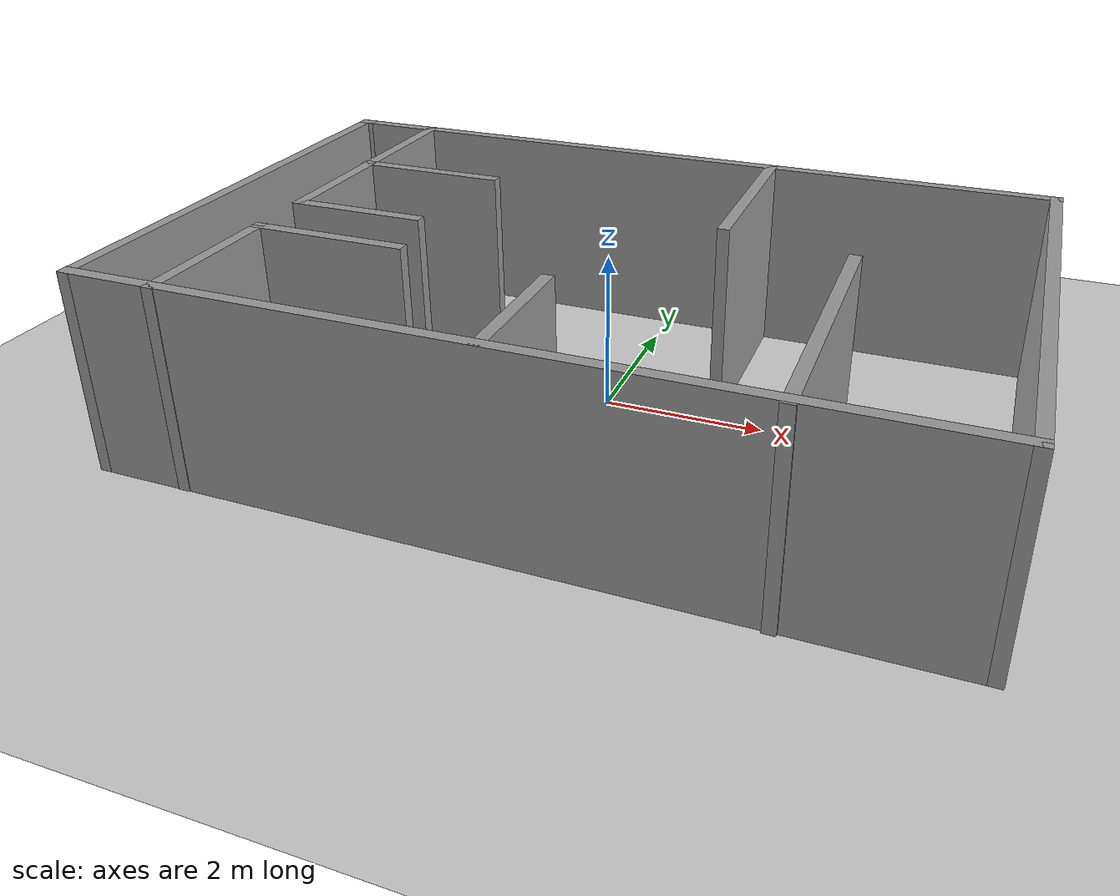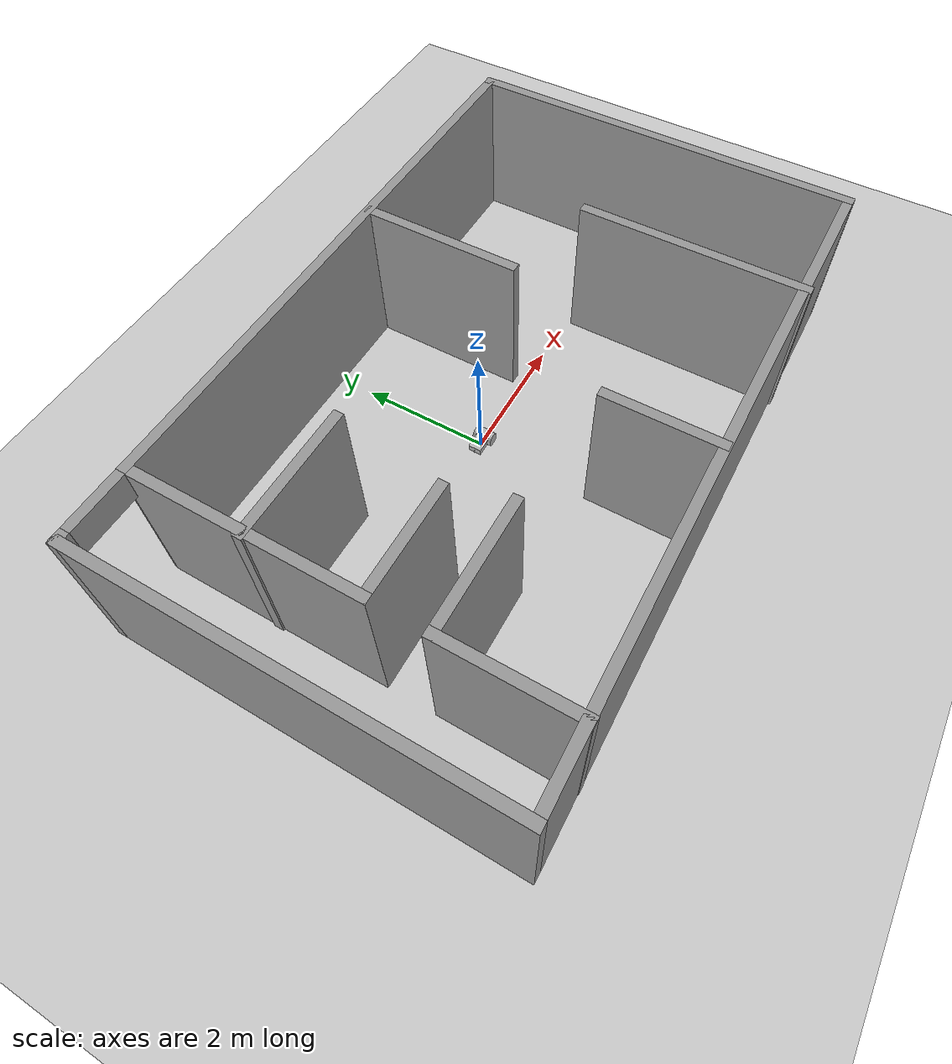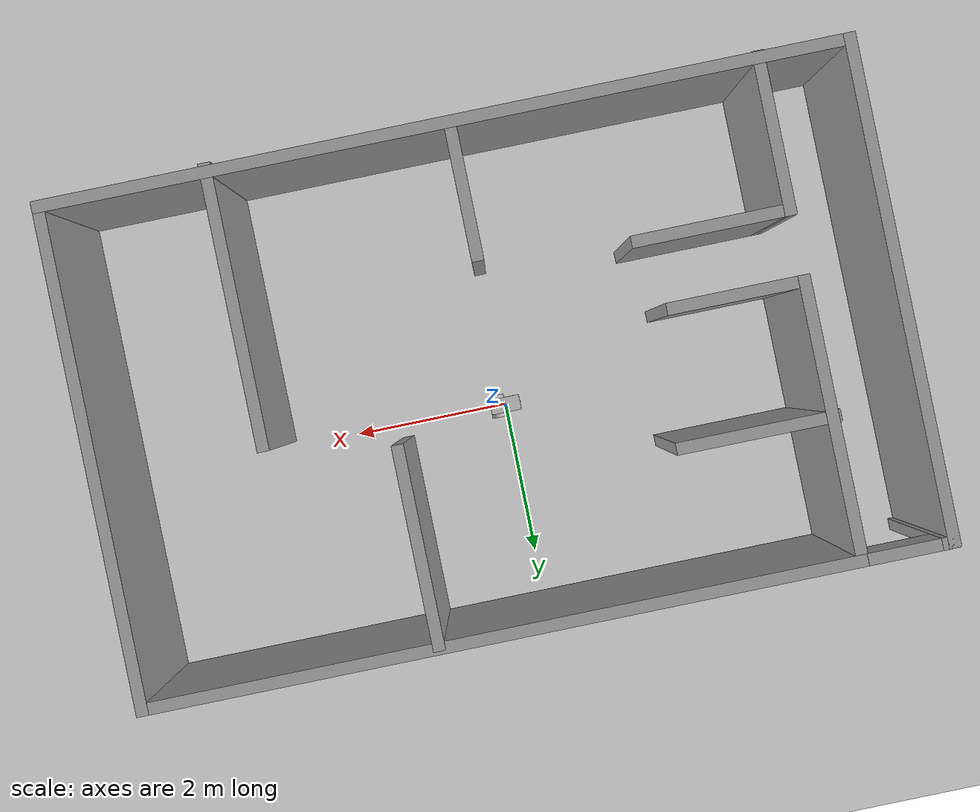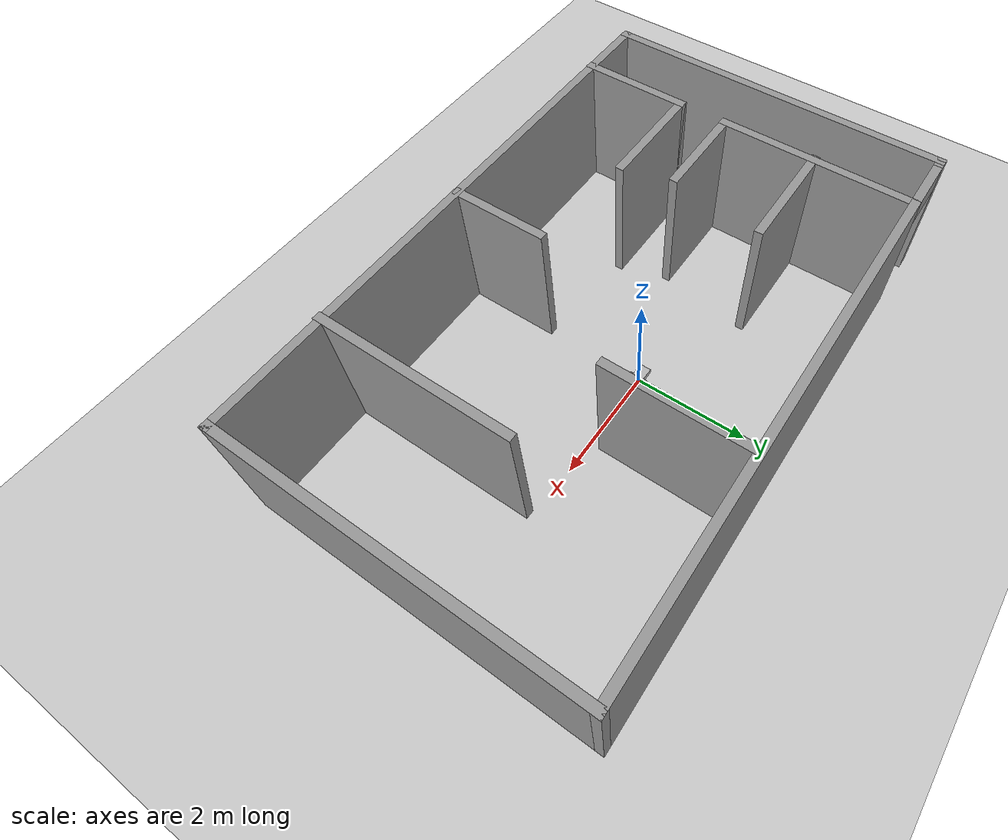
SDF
<?xml version="1.0" ?>
<sdf version="1.5">
  <world name="main_world">
    <scene>
      <ambient>0.8 0.8 0.8 1</ambient>
      <background>0 0 0 1</background>
      <shadows>false</shadows>
    </scene>

    <!-- A ground plane -->
    <include>
      <uri>model://ground_plane</uri>
    </include>

     <!-- A map -->
    <include>
      <uri>model://Maze</uri>
    </include>

    <!-- robot model -->
    <model name="my_robot">
      <include>
        <uri>model://Robot</uri>
      </include>

      <plugin name='control' filename='librobot_plugin.so'>
	<velocity>10</velocity>
	<behavior>1</behavior>
      </plugin>
    </model>
  </world>
</sdf>

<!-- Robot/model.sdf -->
<sdf version='1.6'>
  <model name="my_robot">
    <static>false</static>
    <link name='chassis'>
      <pose>0 0 .1 0 0 0</pose>
      <inertial>
	<mass>0.2</mass>
	<inertia>
          <ixx>0.00083</ixx>       <!-- for a box: ixx = 0.083 * mass * (y*y + z*z) -->
          <ixy>0.0</ixy>           <!-- for a box: ixy = 0 -->
          <ixz>0.0</ixz>           <!-- for a box: ixz = 0 -->
          <iyy>0.002822</iyy>      <!-- for a box: iyy = 0.083 * mass * (x*x + z*z) -->
          <iyz>0.0</iyz>           <!-- for a box: iyz = 0 -->
          <izz>0.00332</izz>       <!-- for a box: izz = 0.083 * mass * (x*x + y*y) -->
	</inertia>
      </inertial>
      <collision name='collision'>
        <geometry>
          <box>
            <size>.4 .2 .1</size>
          </box>
        </geometry>
      </collision>
      <visual name='visual'>
        <geometry>
          <box>
            <size>.4 .2 .1</size>
          </box>
        </geometry>
      </visual>
      <collision name='caster_collision'>
        <pose>-0.15 0 -0.05 0 0 0</pose>
        <geometry>
          <sphere>
            <radius>.05</radius>
          </sphere>
        </geometry>
        <surface>
          <friction>
            <ode>
              <mu>0</mu>
              <mu2>0</mu2>
              <slip1>1.0</slip1>
              <slip2>1.0</slip2>
            </ode>
          </friction>
        </surface>
      </collision>
      <visual name='caster_visual'>
        <pose>-0.15 0 -0.05 0 0 0</pose>
        <geometry>
          <sphere>
            <radius>.05</radius>
          </sphere>
        </geometry>
      </visual>
    </link>

    <link name="right_wheel">
      <pose>0.1 0.125 0.1 0 1.5707 -1.5707</pose>
      <inertial>
	<mass>0.1</mass>
	<inertia>
          <ixx>0.00026975</ixx>
          <iyy>0.00026975</iyy>
          <izz>0.0005</izz>
          <ixy>0</ixy>
          <ixz>0</ixz>
          <iyz>0</iyz>
	</inertia>
      </inertial>
      <collision name="collision">
        <geometry>
          <cylinder>
            <radius>.1</radius>
            <length>.05</length>
          </cylinder>
        </geometry>
	<surface>
          <friction>
            <ode>
              <mu>0.72</mu>
              <mu2>0.72</mu2>
            </ode>
          </friction>
        </surface>
      </collision>
      <visual name="visual">
        <geometry>
          <cylinder>
            <radius>.1</radius>
            <length>.05</length>
          </cylinder>
        </geometry>
      </visual>
    </link>

    <link name="left_wheel">
      <pose>0.1 -0.125 0.1 0 1.5707 -1.5707</pose>
      <inertial>
	<mass>0.1</mass>
	<inertia>
          <ixx>0.00026975</ixx>
          <iyy>0.00026975</iyy>
          <izz>0.0005</izz>
          <ixy>0</ixy>
          <ixz>0</ixz>
          <iyz>0</iyz>
	</inertia>
      </inertial>
      <collision name="collision">
        <geometry>
          <cylinder>
            <radius>.1</radius>
            <length>.05</length>
          </cylinder>
        </geometry>
	<surface>
          <friction>
            <ode>
              <mu>0.72</mu>
              <mu2>0.72</mu2>
            </ode>
          </friction>
        </surface>
      </collision>
      <visual name="visual">
        <geometry>
          <cylinder>
            <radius>.1</radius>
            <length>.05</length>
          </cylinder>
        </geometry>
      </visual>
    </link>

    <link name='camera_link'>
      <pose>-0.2 0 0.1 0 0 3.14159</pose>
      <inertial>
        <mass>0.01</mass>
        <inertia>
          <ixx>0.000000664</ixx>
          <iyy>0.000000664</iyy>
          <izz>0.000000664</izz>
          <ixy>0</ixy>
          <ixz>0</ixz>
          <iyz>0</iyz>
        </inertia>
      </inertial>
      <collision name='collision'>
        <geometry>
          <box>
	    <size>0.02 0.02 0.02</size>
          </box>
        </geometry>
      </collision>
      <visual name='visual'>
        <geometry>
          <box>
	    <size>0.02 0.02 0.02</size>
          </box>
        </geometry>
      </visual>
      <sensor name='camera' type='camera'>
        <camera name='__default__'>
          <horizontal_fov>1.047</horizontal_fov>
          <image>
	    <width>320</width>
	    <height>240</height>
          </image>
          <clip>
	    <near>0.1</near>
	    <far>100</far>
          </clip>
        </camera>
	<plugin name="light_sensor_plugin" filename="liblight_sensor_plugin.so">
	  <baseline>0.2</baseline>
          <alwaysOn>1</alwaysOn>
          <!-- Keep this zero, update_rate in the parent sensor tag
	       will control the frame rate. -->
	  <updateRate>0.0</updateRate>
	  <cameraName>camera</cameraName>
	  <imageTopicName>rgb/image_raw</imageTopicName>
	  <cameraInfoTopicName>rgb/camera_info</cameraInfoTopicName>
	  <frameName>camera_link</frameName>
	  <distortionK1>0.0</distortionK1>
	  <distortionK2>0.0</distortionK2>
	  <distortionK3>0.0</distortionK3>
	  <distortionT1>0.0</distortionT1>
	  <distortionT2>0.0</distortionT2>
	  <CxPrime>0</CxPrime>
	  <Cx>0</Cx>
	  <Cy>0</Cy>
	  <focalLength>0</focalLength>
	  <hackBaseline>0</hackBaseline>
	</plugin>
        <always_on>1</always_on>
        <update_rate>30</update_rate>
        <visualize>0</visualize>
      </sensor>
    </link>

    <joint name="camara_joint" type="fixed">
      <child>camera_link</child>
      <parent>chassis</parent>
    </joint>

    <joint type="revolute" name="right_wheel_hinge">
      <pose>0 0 0 0 0 0</pose>
      <child>right_wheel</child>
      <parent>chassis</parent>
      <axis>
        <xyz>0 0 1</xyz>
      </axis>
    </joint>

    <joint type="revolute" name="left_wheel_hinge">
      <pose>0 0 0 0 0 0</pose>
      <child>left_wheel</child>
      <parent>chassis</parent>
      <axis>
        <xyz>0 0 1</xyz>
      </axis>
    </joint>
  </model>
</sdf>

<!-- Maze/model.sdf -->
<sdf version='1.6'>
  <model name='Maze'>
    <pose frame=''>0.041405 -0.440623 0 0 -0 0</pose>
    <link name='Wall_0'>
      <collision name='Wall_0_Collision'>
        <geometry>
          <box>
            <size>6.25 0.15 2.5</size>
          </box>
        </geometry>
        <pose frame=''>0 0 1.25 0 -0 0</pose>
      </collision>
      <visual name='Wall_0_Visual'>
        <pose frame=''>0 0 1.25 0 -0 0</pose>
        <geometry>
          <box>
            <size>6.25 0.15 2.5</size>
          </box>
        </geometry>
        <material>
          <script>
            <uri>file://media/materials/scripts/gazebo.material</uri>
            <name>Gazebo/Grey</name>
          </script>
          <emissive>1 1 1 1</emissive>
        </material>
        <meta>
          <layer>0</layer>
        </meta>
      </visual>
      <pose frame=''>-4.925 0.017238 0 0 -0 -1.5708</pose>
    </link>
    <link name='Wall_1'>
      <collision name='Wall_1_Collision'>
        <geometry>
          <box>
            <size>10 0.15 2.5</size>
          </box>
        </geometry>
        <pose frame=''>0 0 1.25 0 -0 0</pose>
      </collision>
      <visual name='Wall_1_Visual'>
        <pose frame=''>0 0 1.25 0 -0 0</pose>
        <geometry>
          <box>
            <size>10 0.15 2.5</size>
          </box>
        </geometry>
        <material>
          <script>
            <uri>file://media/materials/scripts/gazebo.material</uri>
            <name>Gazebo/Grey</name>
          </script>
          <emissive>1 1 1 1</emissive>
        </material>
        <meta>
          <layer>0</layer>
        </meta>
      </visual>
      <pose frame=''>-0 -3.03276 0 0 -0 0</pose>
    </link>
    <link name='Wall_10'>
      <collision name='Wall_10_Collision'>
        <geometry>
          <box>
            <size>2 0.15 2.5</size>
          </box>
        </geometry>
        <pose frame=''>0 0 1.25 0 -0 0</pose>
      </collision>
      <visual name='Wall_10_Visual'>
        <pose frame=''>0 0 1.25 0 -0 0</pose>
        <geometry>
          <box>
            <size>2 0.15 2.5</size>
          </box>
        </geometry>
        <material>
          <script>
            <uri>file://media/materials/scripts/gazebo.material</uri>
            <name>Gazebo/Grey</name>
          </script>
          <emissive>1 1 1 1</emissive>
        </material>
        <meta>
          <layer>0</layer>
        </meta>
      </visual>
      <pose frame=''>-3.81506 -2.11564 0 0 -0 1.5708</pose>
    </link>
    <link name='Wall_11'>
      <collision name='Wall_11_Collision'>
        <geometry>
          <box>
            <size>2 0.15 2.5</size>
          </box>
        </geometry>
        <pose frame=''>0 0 1.25 0 -0 0</pose>
      </collision>
      <visual name='Wall_11_Visual'>
        <pose frame=''>0 0 1.25 0 -0 0</pose>
        <geometry>
          <box>
            <size>2 0.15 2.5</size>
          </box>
        </geometry>
        <material>
          <script>
            <uri>file://media/materials/scripts/gazebo.material</uri>
            <name>Gazebo/Grey</name>
          </script>
          <emissive>1 1 1 1</emissive>
        </material>
        <meta>
          <layer>0</layer>
        </meta>
      </visual>
      <pose frame=''>-2.89006 -1.19064 0 0 -0 0</pose>
    </link>
    <link name='Wall_13'>
      <collision name='Wall_13_Collision'>
        <geometry>
          <box>
            <size>1.75 0.15 2.5</size>
          </box>
        </geometry>
        <pose frame=''>0 0 1.25 0 -0 0</pose>
      </collision>
      <visual name='Wall_13_Visual'>
        <pose frame=''>0 0 1.25 0 -0 0</pose>
        <geometry>
          <box>
            <size>1.75 0.15 2.5</size>
          </box>
        </geometry>
        <material>
          <script>
            <uri>file://media/materials/scripts/gazebo.material</uri>
            <name>Gazebo/Grey</name>
          </script>
          <emissive>1 1 1 1</emissive>
        </material>
        <meta>
          <layer>0</layer>
        </meta>
      </visual>
      <pose frame=''>-0.064432 -2.21404 0 0 -0 1.5708</pose>
    </link>
    <link name='Wall_15'>
      <collision name='Wall_15_Collision'>
        <geometry>
          <box>
            <size>2.5 0.15 2.5</size>
          </box>
        </geometry>
        <pose frame=''>0 0 1.25 0 -0 0</pose>
      </collision>
      <visual name='Wall_15_Visual'>
        <pose frame=''>0 0 1.25 0 -0 0</pose>
        <geometry>
          <box>
            <size>2.5 0.15 2.5</size>
          </box>
        </geometry>
        <material>
          <script>
            <uri>file://media/materials/scripts/gazebo.material</uri>
            <name>Gazebo/Grey</name>
          </script>
          <emissive>1 1 1 1</emissive>
        </material>
        <meta>
          <layer>0</layer>
        </meta>
      </visual>
      <pose frame=''>1.31878 1.84921 0 0 -0 -1.5708</pose>
    </link>
    <link name='Wall_17'>
      <collision name='Wall_17_Collision'>
        <geometry>
          <box>
            <size>3.5 0.15 2.5</size>
          </box>
        </geometry>
        <pose frame=''>0 0 1.25 0 -0 0</pose>
      </collision>
      <visual name='Wall_17_Visual'>
        <pose frame=''>0 0 1.25 0 -0 0</pose>
        <geometry>
          <box>
            <size>3.5 0.15 2.5</size>
          </box>
        </geometry>
        <material>
          <script>
            <uri>file://media/materials/scripts/gazebo.material</uri>
            <name>Gazebo/Grey</name>
          </script>
          <emissive>1 1 1 1</emissive>
        </material>
        <meta>
          <layer>0</layer>
        </meta>
      </visual>
      <pose frame=''>2.88819 -1.39224 0 0 -0 1.5708</pose>
    </link>
    <link name='Wall_2'>
      <collision name='Wall_2_Collision'>
        <geometry>
          <box>
            <size>6.25 0.15 2.5</size>
          </box>
        </geometry>
        <pose frame=''>0 0 1.25 0 -0 0</pose>
      </collision>
      <visual name='Wall_2_Visual'>
        <pose frame=''>0 0 1.25 0 -0 0</pose>
        <geometry>
          <box>
            <size>6.25 0.15 2.5</size>
          </box>
        </geometry>
        <material>
          <script>
            <uri>file://media/materials/scripts/gazebo.material</uri>
            <name>Gazebo/Grey</name>
          </script>
          <emissive>1 1 1 1</emissive>
        </material>
        <meta>
          <layer>0</layer>
        </meta>
      </visual>
      <pose frame=''>4.925 0.017238 0 0 -0 1.5708</pose>
    </link>
    <link name='Wall_3'>
      <pose frame=''>-0 3.06724 0 0 -0 3.14159</pose>
      <visual name='Wall_3_Visual_0'>
        <pose frame=''>-0.559831 0 1.25 0 -0 0</pose>
        <geometry>
          <box>
            <size>8.88034 0.15 2.5</size>
          </box>
        </geometry>
        <material>
          <script>
            <uri>file://media/materials/scripts/gazebo.material</uri>
            <name>Gazebo/Grey</name>
          </script>
          <emissive>1 1 1 1</emissive>
        </material>
        <meta>
          <layer>0</layer>
        </meta>
      </visual>
      <collision name='Wall_3_Collision_0'>
        <geometry>
          <box>
            <size>8.88034 0.15 2.5</size>
          </box>
        </geometry>
        <pose frame=''>-0.559831 0 1.25 0 -0 0</pose>
      </collision>
      <visual name='Wall_3_Visual_1'>
        <pose frame=''>4.89017 0 1.25 0 -0 0</pose>
        <geometry>
          <box>
            <size>0.219662 0.15 2.5</size>
          </box>
        </geometry>
        <material>
          <script>
            <uri>file://media/materials/scripts/gazebo.material</uri>
            <name>Gazebo/Grey</name>
          </script>
          <emissive>1 1 1 1</emissive>
        </material>
        <meta>
          <layer>0</layer>
        </meta>
      </visual>
      <collision name='Wall_3_Collision_1'>
        <geometry>
          <box>
            <size>0.219662 0.15 2.5</size>
          </box>
        </geometry>
        <pose frame=''>4.89017 0 1.25 0 -0 0</pose>
      </collision>
      <visual name='Wall_3_Visual_2'>
        <pose frame=''>4.33034 0 2.25 0 -0 0</pose>
        <geometry>
          <box>
            <size>0.9 0.15 0.5</size>
          </box>
        </geometry>
        <material>
          <script>
            <uri>file://media/materials/scripts/gazebo.material</uri>
            <name>Gazebo/Grey</name>
          </script>
          <emissive>1 1 1 1</emissive>
        </material>
        <meta>
          <layer>0</layer>
        </meta>
      </visual>
      <collision name='Wall_3_Collision_2'>
        <geometry>
          <box>
            <size>0.9 0.15 0.5</size>
          </box>
        </geometry>
        <pose frame=''>4.33034 0 2.25 0 -0 0</pose>
      </collision>
    </link>
    <link name='Wall_5'>
      <collision name='Wall_5_Collision'>
        <geometry>
          <box>
            <size>3.5 0.15 2.5</size>
          </box>
        </geometry>
        <pose frame=''>0 0 1.25 0 -0 0</pose>
      </collision>
      <visual name='Wall_5_Visual'>
        <pose frame=''>0 0 1.25 0 -0 0</pose>
        <geometry>
          <box>
            <size>3.5 0.15 2.5</size>
          </box>
        </geometry>
        <material>
          <script>
            <uri>file://media/materials/scripts/gazebo.material</uri>
            <name>Gazebo/Grey</name>
          </script>
          <emissive>1 1 1 1</emissive>
        </material>
        <meta>
          <layer>0</layer>
        </meta>
      </visual>
      <pose frame=''>-3.81506 1.34921 0 0 -0 -1.5708</pose>
    </link>
    <link name='Wall_6'>
      <collision name='Wall_6_Collision'>
        <geometry>
          <box>
            <size>1.75 0.15 2.5</size>
          </box>
        </geometry>
        <pose frame=''>0 0 1.25 0 -0 0</pose>
      </collision>
      <visual name='Wall_6_Visual'>
        <pose frame=''>0 0 1.25 0 -0 0</pose>
        <geometry>
          <box>
            <size>1.75 0.15 2.5</size>
          </box>
        </geometry>
        <material>
          <script>
            <uri>file://media/materials/scripts/gazebo.material</uri>
            <name>Gazebo/Grey</name>
          </script>
          <emissive>1 1 1 1</emissive>
        </material>
        <meta>
          <layer>0</layer>
        </meta>
      </visual>
      <pose frame=''>-3.01506 -0.325793 0 0 -0 0</pose>
    </link>
    <link name='Wall_8'>
      <collision name='Wall_8_Collision'>
        <geometry>
          <box>
            <size>2 0.15 2.5</size>
          </box>
        </geometry>
        <pose frame=''>0 0 1.25 0 -0 0</pose>
      </collision>
      <visual name='Wall_8_Visual'>
        <pose frame=''>0 0 1.25 0 -0 0</pose>
        <geometry>
          <box>
            <size>2 0.15 2.5</size>
          </box>
        </geometry>
        <material>
          <script>
            <uri>file://media/materials/scripts/gazebo.material</uri>
            <name>Gazebo/Grey</name>
          </script>
          <emissive>1 1 1 1</emissive>
        </material>
        <meta>
          <layer>0</layer>
        </meta>
      </visual>
      <pose frame=''>-2.91666 1.32179 0 0 -0 0</pose>
    </link>
    <static>1</static>
  </model>
</sdf>
